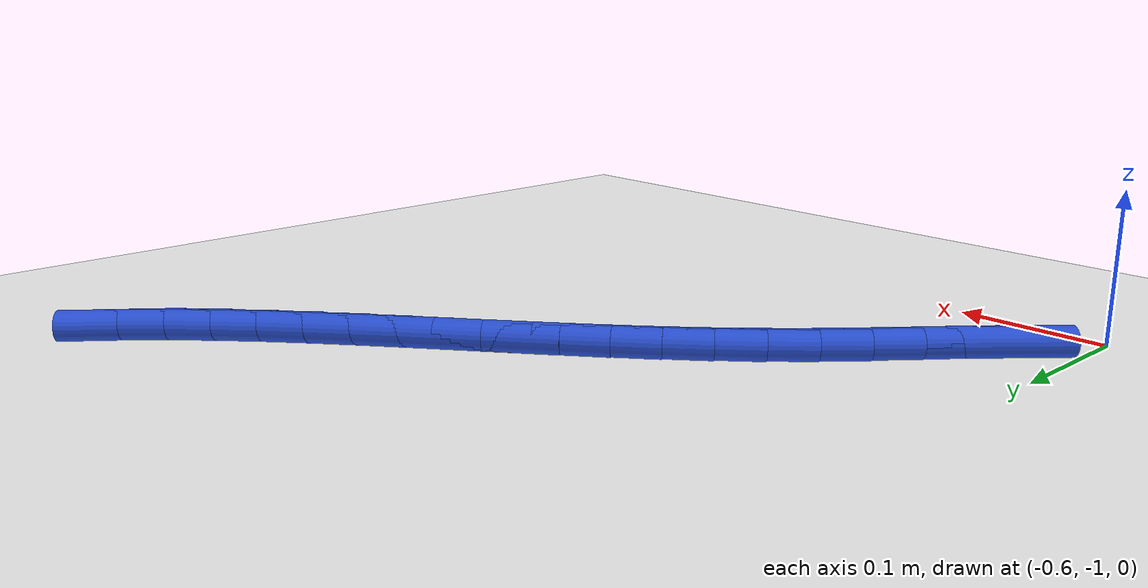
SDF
<sdf version="1.6">
 <world name="default">
  <model name="ground_plane">
   <static>1</static>
   <link name="link">
    <collision name="collision">
     <geometry><plane><normal>0 0 1</normal><size>100 100</size></plane></geometry>
     <surface><friction><ode><mu>100</mu><mu2>50</mu2></ode></friction></surface>
    </collision>
    <visual name="visual">
     <cast_shadows>0</cast_shadows>
     <geometry><plane><normal>0 0 1</normal><size>100 100</size></plane></geometry>
     <material>
      <script><uri>file://media/materials/scripts/gazebo.material</uri><name>Gazebo/WhiteGlow</name></script>
     </material>
    </visual>
   </link>
  </model>
  <model name="line">
   <link name="link_193">
    <pose>-0.5677427201725819 -0.9347700567979697 0.01 0 1.57 0.8633591758301749</pose>
    <collision name="collision">
     <geometry><cylinder><radius>0.01</radius><length>0.08</length></cylinder></geometry>
    </collision>
    <visual name="visual">
     <material>
      <script><name>Gazebo/Blue</name><uri>file://media/materials/scripts/gazebo.material</uri></script>
     </material>
     <geometry><cylinder><radius>0.01</radius><length>0.08</length></cylinder></geometry>
    </visual>
   </link>
   <link name="link_194">
    <pose>-0.5475438806643881 -0.9111479540113905 0.01 0 1.57 0.885887044564893</pose>
    <collision name="collision">
     <geometry><cylinder><radius>0.01</radius><length>0.08</length></cylinder></geometry>
    </collision>
    <visual name="visual">
     <material>
      <script><name>Gazebo/Blue</name><uri>file://media/materials/scripts/gazebo.material</uri></script>
     </material>
     <geometry><cylinder><radius>0.01</radius><length>0.08</length></cylinder></geometry>
    </visual>
   </link>
   <link name="link_195">
    <pose>-0.5275780850766557 -0.8867044337614814 0.01 0 1.57 0.8857463295800185</pose>
    <collision name="collision">
     <geometry><cylinder><radius>0.01</radius><length>0.08</length></cylinder></geometry>
    </collision>
    <visual name="visual">
     <material>
      <script><name>Gazebo/Blue</name><uri>file://media/materials/scripts/gazebo.material</uri></script>
     </material>
     <geometry><cylinder><radius>0.01</radius><length>0.08</length></cylinder></geometry>
    </visual>
   </link>
   <link name="link_196">
    <pose>-0.5074569065000625 -0.8620777566788665 0.01 0 1.57 0.8634474480823371</pose>
    <collision name="collision">
     <geometry><cylinder><radius>0.01</radius><length>0.08</length></cylinder></geometry>
    </collision>
    <visual name="visual">
     <material>
      <script><name>Gazebo/Blue</name><uri>file://media/materials/scripts/gazebo.material</uri></script>
     </material>
     <geometry><cylinder><radius>0.01</radius><length>0.08</length></cylinder></geometry>
    </visual>
   </link>
   <link name="link_197">
    <pose>-0.4867919180252853 -0.83790618339417 0.01 0 1.57 0.8220164347863116</pose>
    <collision name="collision">
     <geometry><cylinder><radius>0.01</radius><length>0.08</length></cylinder></geometry>
    </collision>
    <visual name="visual">
     <material>
      <script><name>Gazebo/Blue</name><uri>file://media/materials/scripts/gazebo.material</uri></script>
     </material>
     <geometry><cylinder><radius>0.01</radius><length>0.08</length></cylinder></geometry>
    </visual>
   </link>
   <link name="link_198">
    <pose>-0.46525859684915927 -0.8147351333458189 0.01 0 1.57 0.7804821779918462</pose>
    <collision name="collision">
     <geometry><cylinder><radius>0.01</radius><length>0.08</length></cylinder></geometry>
    </collision>
    <visual name="visual">
     <material>
      <script><name>Gazebo/Blue</name><uri>file://media/materials/scripts/gazebo.material</uri></script>
     </material>
     <geometry><cylinder><radius>0.01</radius><length>0.08</length></cylinder></geometry>
    </visual>
   </link>
   <link name="link_199">
    <pose>-0.4428921026740497 -0.7925874718730568 0.01 0 1.57 0.7458300063058456</pose>
    <collision name="collision">
     <geometry><cylinder><radius>0.01</radius><length>0.08</length></cylinder></geometry>
    </collision>
    <visual name="visual">
     <material>
      <script><name>Gazebo/Blue</name><uri>file://media/materials/scripts/gazebo.material</uri></script>
     </material>
     <geometry><cylinder><radius>0.01</radius><length>0.08</length></cylinder></geometry>
    </visual>
   </link>
   <link name="link_200">
    <pose>-0.4198533323047651 -0.7713033908815009 0.01 0 1.57 0.7182100289617561</pose>
    <collision name="collision">
     <geometry><cylinder><radius>0.01</radius><length>0.08</length></cylinder></geometry>
    </collision>
    <visual name="visual">
     <material>
      <script><name>Gazebo/Blue</name><uri>file://media/materials/scripts/gazebo.material</uri></script>
     </material>
     <geometry><cylinder><radius>0.01</radius><length>0.08</length></cylinder></geometry>
    </visual>
   </link>
   <link name="link_201">
    <pose>-0.39630331473741115 -0.7507228902265484 0.01 0 1.57 0.697695514220211</pose>
    <collision name="collision">
     <geometry><cylinder><radius>0.01</radius><length>0.08</length></cylinder></geometry>
    </collision>
    <visual name="visual">
     <material>
      <script><name>Gazebo/Blue</name><uri>file://media/materials/scripts/gazebo.material</uri></script>
     </material>
     <geometry><cylinder><radius>0.01</radius><length>0.08</length></cylinder></geometry>
    </visual>
   </link>
   <link name="link_202">
    <pose>-0.37240307896809544 -0.7306859697635973 0.01 0 1.57 0.6843307090845121</pose>
    <collision name="collision">
     <geometry><cylinder><radius>0.01</radius><length>0.08</length></cylinder></geometry>
    </collision>
    <visual name="visual">
     <material>
      <script><name>Gazebo/Blue</name><uri>file://media/materials/scripts/gazebo.material</uri></script>
     </material>
     <geometry><cylinder><radius>0.01</radius><length>0.08</length></cylinder></geometry>
    </visual>
   </link>
   <link name="link_203">
    <pose>-0.3483136539929236 -0.7110326293480445 0.01 0 1.57 0.6781621995998928</pose>
    <collision name="collision">
     <geometry><cylinder><radius>0.01</radius><length>0.08</length></cylinder></geometry>
    </collision>
    <visual name="visual">
     <material>
      <script><name>Gazebo/Blue</name><uri>file://media/materials/scripts/gazebo.material</uri></script>
     </material>
     <geometry><cylinder><radius>0.01</radius><length>0.08</length></cylinder></geometry>
    </visual>
   </link>
   <link name="link_204">
    <pose>-0.3241960688080018 -0.6916028688352869 0.01 0 1.57 0.679260116274042</pose>
    <collision name="collision">
     <geometry><cylinder><radius>0.01</radius><length>0.08</length></cylinder></geometry>
    </collision>
    <visual name="visual">
     <material>
      <script><name>Gazebo/Blue</name><uri>file://media/materials/scripts/gazebo.material</uri></script>
     </material>
     <geometry><cylinder><radius>0.01</radius><length>0.08</length></cylinder></geometry>
    </visual>
   </link>
   <link name="link_205">
    <pose>-0.3002113524094364 -0.6722366880807219 0.01 0 1.57 0.6877288660934429</pose>
    <collision name="collision">
     <geometry><cylinder><radius>0.01</radius><length>0.08</length></cylinder></geometry>
    </collision>
    <visual name="visual">
     <material>
      <script><name>Gazebo/Blue</name><uri>file://media/materials/scripts/gazebo.material</uri></script>
     </material>
     <geometry><cylinder><radius>0.01</radius><length>0.08</length></cylinder></geometry>
    </visual>
   </link>
   <link name="link_206">
    <pose>-0.27652053379333313 -0.6527740869397464 0.01 0 1.57 0.7037068468015423</pose>
    <collision name="collision">
     <geometry><cylinder><radius>0.01</radius><length>0.08</length></cylinder></geometry>
    </collision>
    <visual name="visual">
     <material>
      <script><name>Gazebo/Blue</name><uri>file://media/materials/scripts/gazebo.material</uri></script>
     </material>
     <geometry><cylinder><radius>0.01</radius><length>0.08</length></cylinder></geometry>
    </visual>
   </link>
   <link name="link_207">
    <pose>-0.25328464195579936 -0.6330550652677582 0.01 0 1.57 0.7273539363408658</pose>
    <collision name="collision">
     <geometry><cylinder><radius>0.01</radius><length>0.08</length></cylinder></geometry>
    </collision>
    <visual name="visual">
     <material>
      <script><name>Gazebo/Blue</name><uri>file://media/materials/scripts/gazebo.material</uri></script>
     </material>
     <geometry><cylinder><radius>0.01</radius><length>0.08</length></cylinder></geometry>
    </visual>
   </link>
   <link name="link_208">
    <pose>-0.23066470589294089 -0.6129196229201544 0.01 0 1.57 0.7588248628100632</pose>
    <collision name="collision">
     <geometry><cylinder><radius>0.01</radius><length>0.08</length></cylinder></geometry>
    </collision>
    <visual name="visual">
     <material>
      <script><name>Gazebo/Blue</name><uri>file://media/materials/scripts/gazebo.material</uri></script>
     </material>
     <geometry><cylinder><radius>0.01</radius><length>0.08</length></cylinder></geometry>
    </visual>
   </link>
   <link name="link_209">
    <pose>-0.20882175460086394 -0.5922077597523323 0.01 0 1.57 0.7982263918264554</pose>
    <collision name="collision">
     <geometry><cylinder><radius>0.01</radius><length>0.08</length></cylinder></geometry>
    </collision>
    <visual name="visual">
     <material>
      <script><name>Gazebo/Blue</name><uri>file://media/materials/scripts/gazebo.material</uri></script>
     </material>
     <geometry><cylinder><radius>0.01</radius><length>0.08</length></cylinder></geometry>
    </visual>
   </link>
   <link name="link_210">
    <pose>-0.18791681707567423 -0.5707594756196881 0.01 0 1.57 0.8455573776854471</pose>
    <collision name="collision">
     <geometry><cylinder><radius>0.01</radius><length>0.08</length></cylinder></geometry>
    </collision>
    <visual name="visual">
     <material>
      <script><name>Gazebo/Blue</name><uri>file://media/materials/scripts/gazebo.material</uri></script>
     </material>
     <geometry><cylinder><radius>0.01</radius><length>0.08</length></cylinder></geometry>
    </visual>
   </link>
   <link name="link_211">
    <pose>-0.16811092231347916 -0.5484147703776205 0.01 0 1.57 0.9006340224501178</pose>
    <collision name="collision">
     <geometry><cylinder><radius>0.01</radius><length>0.08</length></cylinder></geometry>
    </collision>
    <visual name="visual">
     <material>
      <script><name>Gazebo/Blue</name><uri>file://media/materials/scripts/gazebo.material</uri></script>
     </material>
     <geometry><cylinder><radius>0.01</radius><length>0.08</length></cylinder></geometry>
    </visual>
   </link>
  </model>
 </world>
</sdf>
